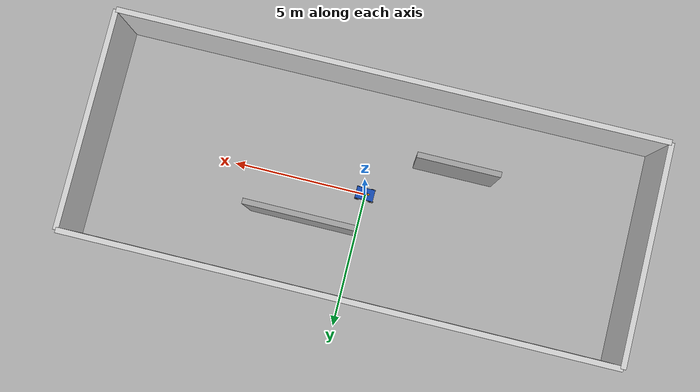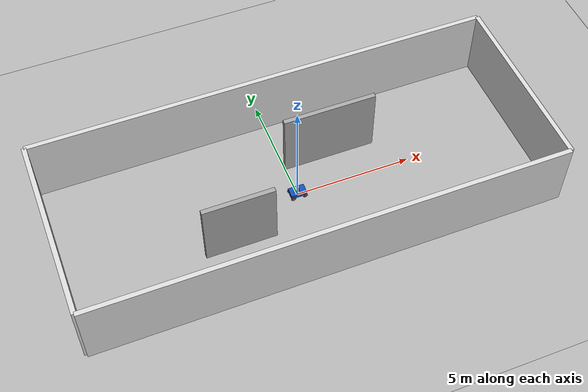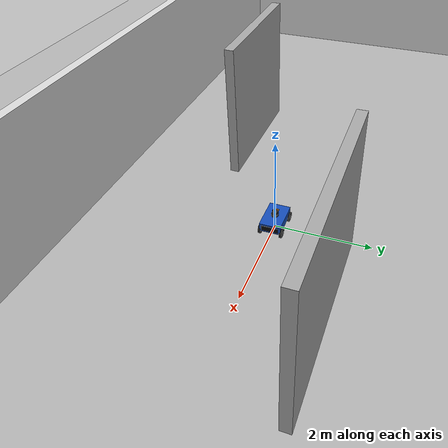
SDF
<?xml version='1.0' encoding='utf-8'?>
<sdf version="1.8">
  <world name="floor1">
    <plugin filename="gz-sim-physics-system" name="gz::sim::systems::Physics" />
    <plugin filename="gz-sim-user-commands-system" name="gz::sim::systems::UserCommands" />
    <plugin filename="gz-sim-scene-broadcaster-system" name="gz::sim::systems::SceneBroadcaster" />
    <plugin filename="gz-sim-imu-system" name="gz::sim::systems::Imu" />
    <plugin filename="gz-sim-sensors-system" name="gz::sim::systems::Sensors">
      <render_engine>ogre2</render_engine>
    </plugin>
    <physics name="1ms" type="ignored">
      <max_step_size>0.001</max_step_size>
      <real_time_factor>1.0</real_time_factor>
    </physics>
    <light type="directional" name="main_sun">
      <cast_shadows>true</cast_shadows>
      <pose>0 0 10 0 0 0</pose>
      <diffuse>0.8 0.8 0.8 1</diffuse>
      <specular>0.2 0.2 0.2 1</specular>
      <attenuation>
        <range>1000</range>
        <constant>0.9</constant>
        <linear>0.01</linear>
        <quadratic>0.001</quadratic>
      </attenuation>
      <direction>-0.5 0.1 -0.9</direction>
    </light>
    <model name="ground">
      <static>true</static>
      <link name="ground_link">
        <collision name="collision">
          <geometry>
            <plane>
              <normal>0 0 1</normal>
              <size>30 20</size>
            </plane>
          </geometry>
        </collision>
        <visual name="visual">
          <geometry>
            <plane>
              <normal>0 0 1</normal>
              <size>30 20</size>
            </plane>
          </geometry>
          <material>
            <ambient>0.7 0.7 0.7 1</ambient>
            <diffuse>0.7 0.7 0.7 1</diffuse>
          </material>
        </visual>
      </link>
    </model>
    <model name="wall_left">
      <static>true</static>
      <pose>0 4 1.5 0 0 0</pose>
      <link name="link">
        <collision name="collision">
          <geometry>
            <box>
              <size>20 0.2 3</size>
            </box>
          </geometry>
        </collision>
        <visual name="visual">
          <geometry>
            <box>
              <size>20 0.2 3</size>
            </box>
          </geometry>
          <material>
            <ambient>0.85 0.85 0.85 1</ambient>
            <diffuse>0.85 0.85 0.85 1</diffuse>
          </material>
        </visual>
      </link>
    </model>
    <model name="wall_right">
      <static>true</static>
      <pose>0 -4 1.5 0 0 0</pose>
      <link name="link">
        <collision name="collision">
          <geometry>
            <box>
              <size>20 0.2 3</size>
            </box>
          </geometry>
        </collision>
        <visual name="visual">
          <geometry>
            <box>
              <size>20 0.2 3</size>
            </box>
          </geometry>
          <material>
            <ambient>0.85 0.85 0.85 1</ambient>
            <diffuse>0.85 0.85 0.85 1</diffuse>
          </material>
        </visual>
      </link>
    </model>
    <model name="wall_front">
      <static>true</static>
      <pose>10 0 1.5 0 0 0</pose>
      <link name="link">
        <collision name="collision">
          <geometry>
            <box>
              <size>0.2 8 3</size>
            </box>
          </geometry>
        </collision>
        <visual name="visual">
          <geometry>
            <box>
              <size>0.2 8 3</size>
            </box>
          </geometry>
          <material>
            <ambient>0.85 0.85 0.85 1</ambient>
            <diffuse>0.85 0.85 0.85 1</diffuse>
          </material>
        </visual>
      </link>
    </model>
    <model name="wall_back">
      <static>true</static>
      <pose>-10 0 1.5 0 0 0</pose>
      <link name="link">
        <collision name="collision">
          <geometry>
            <box>
              <size>0.2 8 3</size>
            </box>
          </geometry>
        </collision>
        <visual name="visual">
          <geometry>
            <box>
              <size>0.2 8 3</size>
            </box>
          </geometry>
          <material>
            <ambient>0.85 0.85 0.85 1</ambient>
            <diffuse>0.85 0.85 0.85 1</diffuse>
          </material>
        </visual>
      </link>
    </model>
    <model name="inner_wall_1">
      <static>true</static>
      <pose>2 1.5 1.5 0 0 0</pose>
      <link name="link">
        <collision name="collision">
          <geometry>
            <box>
              <size>4 0.2 3</size>
            </box>
          </geometry>
        </collision>
        <visual name="visual">
          <geometry>
            <box>
              <size>4 0.2 3</size>
            </box>
          </geometry>
          <material>
            <ambient>0.65 0.65 0.65 1</ambient>
            <diffuse>0.65 0.65 0.65 1</diffuse>
          </material>
        </visual>
      </link>
    </model>
    <model name="inner_wall_2">
      <static>true</static>
      <pose>-3 -1.5 1.5 0 0 0</pose>
      <link name="link">
        <collision name="collision">
          <geometry>
            <box>
              <size>3 0.2 3</size>
            </box>
          </geometry>
        </collision>
        <visual name="visual">
          <geometry>
            <box>
              <size>3 0.2 3</size>
            </box>
          </geometry>
          <material>
            <ambient>0.65 0.65 0.65 1</ambient>
            <diffuse>0.65 0.65 0.65 1</diffuse>
          </material>
        </visual>
      </link>
    </model>
    <model name="thesis_robot">
      <pose>0 0 0 0 0 0</pose>
      <link name="chassis">
        <pose>0 0 0.20 0 0 0</pose>
        <inertial>
          <mass>15.0</mass>
          <inertia>
            <ixx>0.25</ixx>
            <iyy>0.45</iyy>
            <izz>0.55</izz>
          </inertia>
        </inertial>
        <collision name="collision">
          <geometry>
            <box>
              <size>0.60 0.40 0.20</size>
            </box>
          </geometry>
        </collision>
        <visual name="body_visual">
          <geometry>
            <box>
              <size>0.68 0.44 0.18</size>
            </box>
          </geometry>
          <material>
            <ambient>0.08 0.30 0.72 1</ambient>
            <diffuse>0.08 0.30 0.72 1</diffuse>
          </material>
        </visual>
        <sensor name="imu_sensor" type="imu">
          <always_on>true</always_on>
          <update_rate>200</update_rate>
          <topic>/imu/data</topic>
        </sensor>
        <visual name="front_panel">
          <pose>0.342 0 0 0 0 0</pose>
          <geometry>
            <box>
              <size>0.012 0.34 0.11</size>
            </box>
          </geometry>
          <material>
            <ambient>0.04 0.04 0.04 1</ambient>
            <diffuse>0.04 0.04 0.04 1</diffuse>
          </material>
        </visual>
        <visual name="imu_visual">
          <pose>-0.13 0 0.105 0 0 0</pose>
          <geometry>
            <box>
              <size>0.08 0.06 0.03</size>
            </box>
          </geometry>
          <material>
            <ambient>0.90 0.52 0.06 1</ambient>
            <diffuse>0.90 0.52 0.06 1</diffuse>
          </material>
        </visual>
      </link>
      <link name="front_left_wheel">
        <pose>0.26 0.22 0.10 -1.5708 0 0</pose>
        <inertial>
          <mass>1.0</mass>
          <inertia>
            <ixx>0.005</ixx>
            <iyy>0.005</iyy>
            <izz>0.005</izz>
          </inertia>
        </inertial>
        <collision name="collision">
          <geometry>
            <cylinder>
              <radius>0.10</radius>
              <length>0.05</length>
            </cylinder>
          </geometry>
          <surface>
            <friction>
              <ode>
                <mu>1.0</mu>
                <mu2>1.0</mu2>
                <slip1>0.05</slip1>
                <slip2>0.0</slip2>
                <fdir1>0 0 1</fdir1>
              </ode>
            </friction>
          </surface>
        </collision>
        <visual name="visual">
          <geometry>
            <cylinder>
              <radius>0.10</radius>
              <length>0.05</length>
            </cylinder>
          </geometry>
          <material>
            <ambient>0.1 0.1 0.1 1</ambient>
            <diffuse>0.1 0.1 0.1 1</diffuse>
          </material>
        </visual>
        <visual name="hub_visual">
          <pose>0 0 0.026 0 0 0</pose>
          <geometry>
            <cylinder>
              <radius>0.045</radius>
              <length>0.008</length>
            </cylinder>
          </geometry>
          <material>
            <ambient>0.55 0.55 0.55 1</ambient>
            <diffuse>0.55 0.55 0.55 1</diffuse>
          </material>
        </visual>
      </link>
      <link name="front_right_wheel">
        <pose>0.26 -0.22 0.10 -1.5708 0 0</pose>
        <inertial>
          <mass>1.0</mass>
          <inertia>
            <ixx>0.005</ixx>
            <iyy>0.005</iyy>
            <izz>0.005</izz>
          </inertia>
        </inertial>
        <collision name="collision">
          <geometry>
            <cylinder>
              <radius>0.10</radius>
              <length>0.05</length>
            </cylinder>
          </geometry>
          <surface>
            <friction>
              <ode>
                <mu>1.0</mu>
                <mu2>1.0</mu2>
                <slip1>0.05</slip1>
                <slip2>0.0</slip2>
                <fdir1>0 0 1</fdir1>
              </ode>
            </friction>
          </surface>
        </collision>
        <visual name="visual">
          <geometry>
            <cylinder>
              <radius>0.10</radius>
              <length>0.05</length>
            </cylinder>
          </geometry>
          <material>
            <ambient>0.1 0.1 0.1 1</ambient>
            <diffuse>0.1 0.1 0.1 1</diffuse>
          </material>
        </visual>
        <visual name="hub_visual">
          <pose>0 0 -0.026 0 0 0</pose>
          <geometry>
            <cylinder>
              <radius>0.045</radius>
              <length>0.008</length>
            </cylinder>
          </geometry>
          <material>
            <ambient>0.55 0.55 0.55 1</ambient>
            <diffuse>0.55 0.55 0.55 1</diffuse>
          </material>
        </visual>
      </link>
      <link name="rear_left_wheel">
        <pose>-0.26 0.22 0.10 -1.5708 0 0</pose>
        <inertial>
          <mass>1.0</mass>
          <inertia>
            <ixx>0.005</ixx>
            <iyy>0.005</iyy>
            <izz>0.005</izz>
          </inertia>
        </inertial>
        <collision name="collision">
          <geometry>
            <cylinder>
              <radius>0.10</radius>
              <length>0.05</length>
            </cylinder>
          </geometry>
          <surface>
            <friction>
              <ode>
                <mu>1.0</mu>
                <mu2>1.0</mu2>
                <slip1>0.05</slip1>
                <slip2>0.0</slip2>
                <fdir1>0 0 1</fdir1>
              </ode>
            </friction>
          </surface>
        </collision>
        <visual name="visual">
          <geometry>
            <cylinder>
              <radius>0.10</radius>
              <length>0.05</length>
            </cylinder>
          </geometry>
          <material>
            <ambient>0.1 0.1 0.1 1</ambient>
            <diffuse>0.1 0.1 0.1 1</diffuse>
          </material>
        </visual>
        <visual name="hub_visual">
          <pose>0 0 0.026 0 0 0</pose>
          <geometry>
            <cylinder>
              <radius>0.045</radius>
              <length>0.008</length>
            </cylinder>
          </geometry>
          <material>
            <ambient>0.55 0.55 0.55 1</ambient>
            <diffuse>0.55 0.55 0.55 1</diffuse>
          </material>
        </visual>
      </link>
      <link name="rear_right_wheel">
        <pose>-0.26 -0.22 0.10 -1.5708 0 0</pose>
        <inertial>
          <mass>1.0</mass>
          <inertia>
            <ixx>0.005</ixx>
            <iyy>0.005</iyy>
            <izz>0.005</izz>
          </inertia>
        </inertial>
        <collision name="collision">
          <geometry>
            <cylinder>
              <radius>0.10</radius>
              <length>0.05</length>
            </cylinder>
          </geometry>
          <surface>
            <friction>
              <ode>
                <mu>1.0</mu>
                <mu2>1.0</mu2>
                <slip1>0.05</slip1>
                <slip2>0.0</slip2>
                <fdir1>0 0 1</fdir1>
              </ode>
            </friction>
          </surface>
        </collision>
        <visual name="visual">
          <geometry>
            <cylinder>
              <radius>0.10</radius>
              <length>0.05</length>
            </cylinder>
          </geometry>
          <material>
            <ambient>0.1 0.1 0.1 1</ambient>
            <diffuse>0.1 0.1 0.1 1</diffuse>
          </material>
        </visual>
        <visual name="hub_visual">
          <pose>0 0 -0.026 0 0 0</pose>
          <geometry>
            <cylinder>
              <radius>0.045</radius>
              <length>0.008</length>
            </cylinder>
          </geometry>
          <material>
            <ambient>0.55 0.55 0.55 1</ambient>
            <diffuse>0.55 0.55 0.55 1</diffuse>
          </material>
        </visual>
      </link>
      <link name="lidar_link">
        <pose>0 0 0.34 0 0 0</pose>
        <inertial>
          <mass>0.5</mass>
          <inertia>
            <ixx>0.001</ixx>
            <iyy>0.001</iyy>
            <izz>0.001</izz>
          </inertia>
        </inertial>
        <visual name="lidar_visual">
          <geometry>
            <cylinder>
              <radius>0.055</radius>
              <length>0.07</length>
            </cylinder>
          </geometry>
          <material>
            <ambient>0.10 0.10 0.10 1</ambient>
            <diffuse>0.10 0.10 0.10 1</diffuse>
          </material>
          <pose>0 0 0.035 0 0 0</pose>
        </visual>
        <sensor name="lidar_sensor" type="gpu_lidar">
          <always_on>true</always_on>
          <update_rate>10</update_rate>
          <visualize>false</visualize>
          <topic>/lidar</topic>
          <ray>
            <scan>
              <horizontal>
                <samples>1024</samples>
                <resolution>1</resolution>
                <min_angle>-3.1415926</min_angle>
                <max_angle>3.1415926</max_angle>
              </horizontal>
              <vertical>
                <samples>16</samples>
                <resolution>1</resolution>
                <min_angle>-0.261799</min_angle>
                <max_angle>0.261799</max_angle>
              </vertical>
            </scan>
            <range>
              <min>0.30</min>
              <max>30.0</max>
              <resolution>0.01</resolution>
            </range>
          </ray>
        </sensor>
        <visual name="lidar_pedestal">
          <pose>0 0 -0.025 0 0 0</pose>
          <geometry>
            <cylinder>
              <radius>0.075</radius>
              <length>0.05</length>
            </cylinder>
          </geometry>
          <material>
            <ambient>0.16 0.16 0.16 1</ambient>
            <diffuse>0.16 0.16 0.16 1</diffuse>
          </material>
        </visual>
      </link>
      <joint name="front_left_wheel_joint" type="revolute">
        <parent>chassis</parent>
        <child>front_left_wheel</child>
        <axis>
          <xyz>0 0 1</xyz>
          <limit>
            <lower>-1.79769e+308</lower>
            <upper>1.79769e+308</upper>
          </limit>
        </axis>
      </joint>
      <joint name="rear_left_wheel_joint" type="revolute">
        <parent>chassis</parent>
        <child>rear_left_wheel</child>
        <axis>
          <xyz>0 0 1</xyz>
          <limit>
            <lower>-1.79769e+308</lower>
            <upper>1.79769e+308</upper>
          </limit>
        </axis>
      </joint>
      <joint name="front_right_wheel_joint" type="revolute">
        <parent>chassis</parent>
        <child>front_right_wheel</child>
        <axis>
          <xyz>0 0 1</xyz>
          <limit>
            <lower>-1.79769e+308</lower>
            <upper>1.79769e+308</upper>
          </limit>
        </axis>
      </joint>
      <joint name="rear_right_wheel_joint" type="revolute">
        <parent>chassis</parent>
        <child>rear_right_wheel</child>
        <axis>
          <xyz>0 0 1</xyz>
          <limit>
            <lower>-1.79769e+308</lower>
            <upper>1.79769e+308</upper>
          </limit>
        </axis>
      </joint>
      <joint name="lidar_fixed_joint" type="fixed">
        <parent>chassis</parent>
        <child>lidar_link</child>
      </joint>
      <plugin filename="gz-sim-diff-drive-system" name="gz::sim::systems::DiffDrive">
        <left_joint>front_left_wheel_joint</left_joint>
        <left_joint>rear_left_wheel_joint</left_joint>
        <right_joint>front_right_wheel_joint</right_joint>
        <right_joint>rear_right_wheel_joint</right_joint>
        <wheel_separation>0.44</wheel_separation>
        <wheel_radius>0.10</wheel_radius>
        <max_linear_acceleration>1.0</max_linear_acceleration>
        <min_linear_acceleration>-1.0</min_linear_acceleration>
        <max_angular_acceleration>2.0</max_angular_acceleration>
        <min_angular_acceleration>-2.0</min_angular_acceleration>
        <max_linear_velocity>0.8</max_linear_velocity>
        <min_linear_velocity>-0.8</min_linear_velocity>
        <max_angular_velocity>1.5</max_angular_velocity>
        <min_angular_velocity>-1.5</min_angular_velocity>
        <odom_publish_frequency>50</odom_publish_frequency>
        <topic>/cmd_vel</topic>
        <odom_topic>/odom</odom_topic>
      </plugin>
    </model>
  </world>
</sdf>
